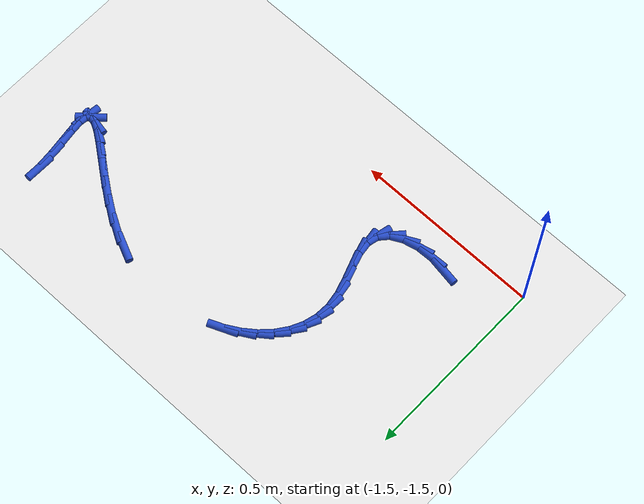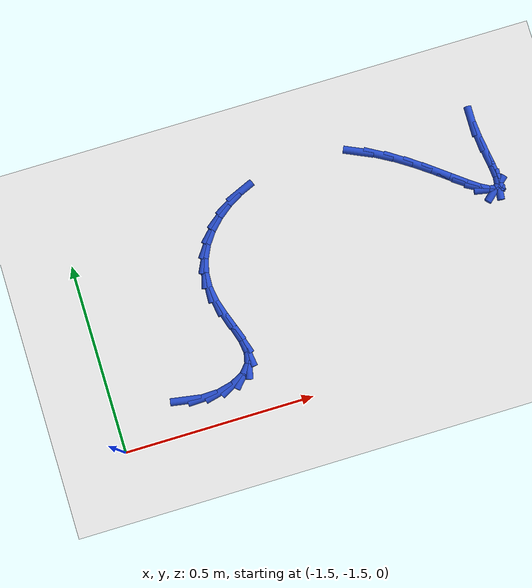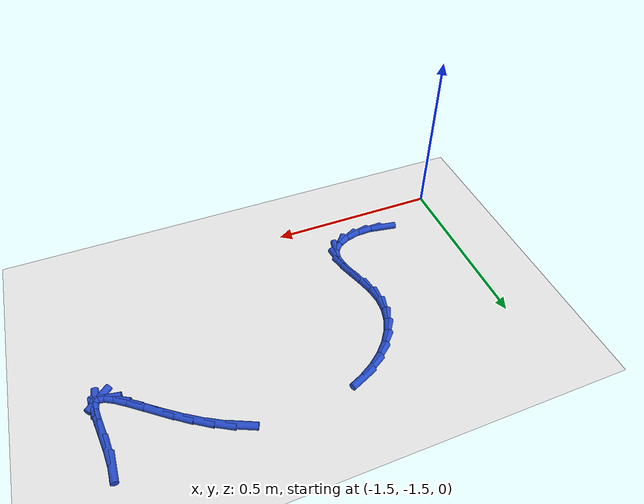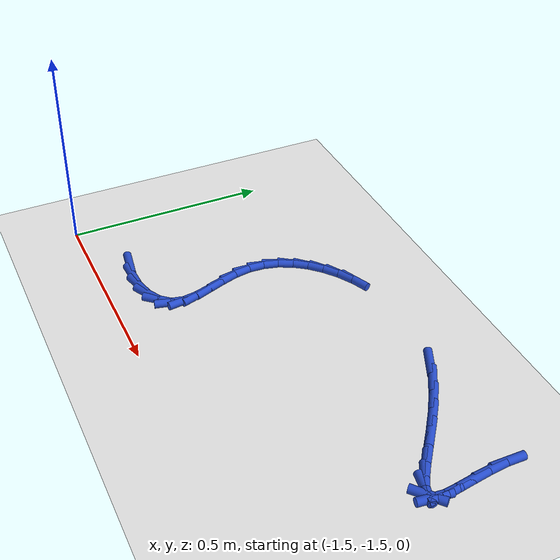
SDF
<sdf version="1.6">
 <world name="default">
  <model name="ground_plane">
   <static>1</static>
   <link name="link">
    <collision name="collision">
     <geometry><plane><normal>0 0 1</normal><size>100 100</size></plane></geometry>
     <surface><friction><ode><mu>100</mu><mu2>50</mu2></ode></friction></surface>
    </collision>
    <visual name="visual">
     <cast_shadows>0</cast_shadows>
     <geometry><plane><normal>0 0 1</normal><size>100 100</size></plane></geometry>
     <material>
      <script><uri>file://media/materials/scripts/gazebo.material</uri><name>Gazebo/WhiteGlow</name></script>
     </material>
    </visual>
   </link>
  </model>
  <model name="line">
   <link name="link_212">
    <pose>-1.3152041415502198 -1.4161363192918932 0.01 0 1.57 -0.16257639946965396</pose>
    <collision name="collision">
     <geometry><cylinder><radius>0.01</radius><length>0.08</length></cylinder></geometry>
    </collision>
    <visual name="visual">
     <material>
      <script><name>Gazebo/Blue</name><uri>file://media/materials/scripts/gazebo.material</uri></script>
     </material>
     <geometry><cylinder><radius>0.01</radius><length>0.08</length></cylinder></geometry>
    </visual>
   </link>
   <link name="link_213">
    <pose>-1.2716650968189083 -1.4232777703360069 0.01 0 1.57 0.03418323781027926</pose>
    <collision name="collision">
     <geometry><cylinder><radius>0.01</radius><length>0.08</length></cylinder></geometry>
    </collision>
    <visual name="visual">
     <material>
      <script><name>Gazebo/Blue</name><uri>file://media/materials/scripts/gazebo.material</uri></script>
     </material>
     <geometry><cylinder><radius>0.01</radius><length>0.08</length></cylinder></geometry>
    </visual>
   </link>
   <link name="link_214">
    <pose>-1.2280499803440268 -1.4217862834611346 0.01 0 1.57 0.2324873619110318</pose>
    <collision name="collision">
     <geometry><cylinder><radius>0.01</radius><length>0.08</length></cylinder></geometry>
    </collision>
    <visual name="visual">
     <material>
      <script><name>Gazebo/Blue</name><uri>file://media/materials/scripts/gazebo.material</uri></script>
     </material>
     <geometry><cylinder><radius>0.01</radius><length>0.08</length></cylinder></geometry>
    </visual>
   </link>
   <link name="link_215">
    <pose>-1.1882102844981302 -1.412353493512939 0.01 0 1.57 0.4778515800676931</pose>
    <collision name="collision">
     <geometry><cylinder><radius>0.01</radius><length>0.08</length></cylinder></geometry>
    </collision>
    <visual name="visual">
     <material>
      <script><name>Gazebo/Blue</name><uri>file://media/materials/scripts/gazebo.material</uri></script>
     </material>
     <geometry><cylinder><radius>0.01</radius><length>0.08</length></cylinder></geometry>
    </visual>
   </link>
   <link name="link_216">
    <pose>-1.1559975016537738 -1.3956710353370816 0.01 0 1.57 0.8423262743415342</pose>
    <collision name="collision">
     <geometry><cylinder><radius>0.01</radius><length>0.08</length></cylinder></geometry>
    </collision>
    <visual name="visual">
     <material>
      <script><name>Gazebo/Blue</name><uri>file://media/materials/scripts/gazebo.material</uri></script>
     </material>
     <geometry><cylinder><radius>0.01</radius><length>0.08</length></cylinder></geometry>
    </visual>
   </link>
   <link name="link_217">
    <pose>-1.1352631241835132 -1.3724305437792261 0.01 0 1.57 1.3443138641735386</pose>
    <collision name="collision">
     <geometry><cylinder><radius>0.01</radius><length>0.08</length></cylinder></geometry>
    </collision>
    <visual name="visual">
     <material>
      <script><name>Gazebo/Blue</name><uri>file://media/materials/scripts/gazebo.material</uri></script>
     </material>
     <geometry><cylinder><radius>0.01</radius><length>0.08</length></cylinder></geometry>
    </visual>
   </link>
   <link name="link_218">
    <pose>-1.1285768580100428 -1.3434148276059579 0.01 0 1.57 -1.4378310288668645</pose>
    <collision name="collision">
     <geometry><cylinder><radius>0.01</radius><length>0.08</length></cylinder></geometry>
    </collision>
    <visual name="visual">
     <material>
      <script><name>Gazebo/Blue</name><uri>file://media/materials/scripts/gazebo.material</uri></script>
     </material>
     <geometry><cylinder><radius>0.01</radius><length>0.08</length></cylinder></geometry>
    </visual>
   </link>
   <link name="link_219">
    <pose>-1.1330738939651241 -1.3097932545533397 0.01 0 1.57 -1.2721851108076876</pose>
    <collision name="collision">
     <geometry><cylinder><radius>0.01</radius><length>0.08</length></cylinder></geometry>
    </collision>
    <visual name="visual">
     <material>
      <script><name>Gazebo/Blue</name><uri>file://media/materials/scripts/gazebo.material</uri></script>
     </material>
     <geometry><cylinder><radius>0.01</radius><length>0.08</length></cylinder></geometry>
    </visual>
   </link>
   <link name="link_220">
    <pose>-1.1444494004873638 -1.2728376216566488 0.01 0 1.57 -1.227450268526067</pose>
    <collision name="collision">
     <geometry><cylinder><radius>0.01</radius><length>0.08</length></cylinder></geometry>
    </collision>
    <visual name="visual">
     <material>
      <script><name>Gazebo/Blue</name><uri>file://media/materials/scripts/gazebo.material</uri></script>
     </material>
     <geometry><cylinder><radius>0.01</radius><length>0.08</length></cylinder></geometry>
    </visual>
   </link>
   <link name="link_221">
    <pose>-1.1583985360856308 -1.2338197266574673 0.01 0 1.57 -1.2730044041688493</pose>
    <collision name="collision">
     <geometry><cylinder><radius>0.01</radius><length>0.08</length></cylinder></geometry>
    </collision>
    <visual name="visual">
     <material>
      <script><name>Gazebo/Blue</name><uri>file://media/materials/scripts/gazebo.material</uri></script>
     </material>
     <geometry><cylinder><radius>0.01</radius><length>0.08</length></cylinder></geometry>
    </visual>
   </link>
   <link name="link_222">
    <pose>-1.1706164592687964 -1.194011367297378 0.01 0 1.57 -1.4133641635246437</pose>
    <collision name="collision">
     <geometry><cylinder><radius>0.01</radius><length>0.08</length></cylinder></geometry>
    </collision>
    <visual name="visual">
     <material>
      <script><name>Gazebo/Blue</name><uri>file://media/materials/scripts/gazebo.material</uri></script>
     </material>
     <geometry><cylinder><radius>0.01</radius><length>0.08</length></cylinder></geometry>
    </visual>
   </link>
   <link name="link_223">
    <pose>-1.1768612313160665 -1.1546731883490364 0.01 0 1.57 1.5225806165175242</pose>
    <collision name="collision">
     <geometry><cylinder><radius>0.01</radius><length>0.08</length></cylinder></geometry>
    </collision>
    <visual name="visual">
     <material>
      <script><name>Gazebo/Blue</name><uri>file://media/materials/scripts/gazebo.material</uri></script>
     </material>
     <geometry><cylinder><radius>0.01</radius><length>0.08</length></cylinder></geometry>
    </visual>
   </link>
   <link name="link_224">
    <pose>-1.1750282733939539 -1.11668687022027 0.01 0 1.57 1.3167181536272181</pose>
    <collision name="collision">
     <geometry><cylinder><radius>0.01</radius><length>0.08</length></cylinder></geometry>
    </collision>
    <visual name="visual">
     <material>
      <script><name>Gazebo/Blue</name><uri>file://media/materials/scripts/gazebo.material</uri></script>
     </material>
     <geometry><cylinder><radius>0.01</radius><length>0.08</length></cylinder></geometry>
    </visual>
   </link>
   <link name="link_225">
    <pose>-1.1656234204484688 -1.080471254184625 0.01 0 1.57 1.1240835560477316</pose>
    <collision name="collision">
     <geometry><cylinder><radius>0.01</radius><length>0.08</length></cylinder></geometry>
    </collision>
    <visual name="visual">
     <material>
      <script><name>Gazebo/Blue</name><uri>file://media/materials/scripts/gazebo.material</uri></script>
     </material>
     <geometry><cylinder><radius>0.01</radius><length>0.08</length></cylinder></geometry>
    </visual>
   </link>
   <link name="link_226">
    <pose>-1.149311208144467 -1.04641704310177 0.01 0 1.57 0.9494224878973627</pose>
    <collision name="collision">
     <geometry><cylinder><radius>0.01</radius><length>0.08</length></cylinder></geometry>
    </collision>
    <visual name="visual">
     <material>
      <script><name>Gazebo/Blue</name><uri>file://media/materials/scripts/gazebo.material</uri></script>
     </material>
     <geometry><cylinder><radius>0.01</radius><length>0.08</length></cylinder></geometry>
    </visual>
   </link>
   <link name="link_227">
    <pose>-1.1267561721468053 -1.0149149398313755 0.01 0 1.57 0.7929116736465545</pose>
    <collision name="collision">
     <geometry><cylinder><radius>0.01</radius><length>0.08</length></cylinder></geometry>
    </collision>
    <visual name="visual">
     <material>
      <script><name>Gazebo/Blue</name><uri>file://media/materials/scripts/gazebo.material</uri></script>
     </material>
     <geometry><cylinder><radius>0.01</radius><length>0.08</length></cylinder></geometry>
    </visual>
   </link>
   <link name="link_228">
    <pose>-1.0986228481203382 -0.9863556472331082 0.01 0 1.57 0.6519769919616367</pose>
    <collision name="collision">
     <geometry><cylinder><radius>0.01</radius><length>0.08</length></cylinder></geometry>
    </collision>
    <visual name="visual">
     <material>
      <script><name>Gazebo/Blue</name><uri>file://media/materials/scripts/gazebo.material</uri></script>
     </material>
     <geometry><cylinder><radius>0.01</radius><length>0.08</length></cylinder></geometry>
    </visual>
   </link>
   <link name="link_229">
    <pose>-1.0655757717299217 -0.9611298681666378 0.01 0 1.57 0.5229658640572757</pose>
    <collision name="collision">
     <geometry><cylinder><radius>0.01</radius><length>0.08</length></cylinder></geometry>
    </collision>
    <visual name="visual">
     <material>
      <script><name>Gazebo/Blue</name><uri>file://media/materials/scripts/gazebo.material</uri></script>
     </material>
     <geometry><cylinder><radius>0.01</radius><length>0.08</length></cylinder></geometry>
    </visual>
   </link>
   <link name="link_230">
    <pose>-1.0282794786404108 -0.9396283054916325 0.01 0 1.57 0.4021240003641023</pose>
    <collision name="collision">
     <geometry><cylinder><radius>0.01</radius><length>0.08</length></cylinder></geometry>
    </collision>
    <visual name="visual">
     <material>
      <script><name>Gazebo/Blue</name><uri>file://media/materials/scripts/gazebo.material</uri></script>
     </material>
     <geometry><cylinder><radius>0.01</radius><length>0.08</length></cylinder></geometry>
    </visual>
   </link>
   <link name="link_237">
    <pose>-0.7040483500819902 -0.9262140951996933 0.01 0 1.57 -0.4318477971643181</pose>
    <collision name="collision">
     <geometry><cylinder><radius>0.01</radius><length>0.08</length></cylinder></geometry>
    </collision>
    <visual name="visual">
     <material>
      <script><name>Gazebo/Blue</name><uri>file://media/materials/scripts/gazebo.material</uri></script>
     </material>
     <geometry><cylinder><radius>0.01</radius><length>0.08</length></cylinder></geometry>
    </visual>
   </link>
   <link name="link_238">
    <pose>-0.6566742411287096 -0.9480468973593139 0.01 0 1.57 -0.5250140541944311</pose>
    <collision name="collision">
     <geometry><cylinder><radius>0.01</radius><length>0.08</length></cylinder></geometry>
    </collision>
    <visual name="visual">
     <material>
      <script><name>Gazebo/Blue</name><uri>file://media/materials/scripts/gazebo.material</uri></script>
     </material>
     <geometry><cylinder><radius>0.01</radius><length>0.08</length></cylinder></geometry>
    </visual>
   </link>
   <link name="link_239">
    <pose>-0.6109950342213825 -0.9745060687176788 0.01 0 1.57 -0.5910738837558187</pose>
    <collision name="collision">
     <geometry><cylinder><radius>0.01</radius><length>0.08</length></cylinder></geometry>
    </collision>
    <visual name="visual">
     <material>
      <script><name>Gazebo/Blue</name><uri>file://media/materials/scripts/gazebo.material</uri></script>
     </material>
     <geometry><cylinder><radius>0.01</radius><length>0.08</length></cylinder></geometry>
    </visual>
   </link>
   <link name="link_240">
    <pose>-0.5676418310588468 -1.003600926908258 0.01 0 1.57 -0.6346145517681723</pose>
    <collision name="collision">
     <geometry><cylinder><radius>0.01</radius><length>0.08</length></cylinder></geometry>
    </collision>
    <visual name="visual">
     <material>
      <script><name>Gazebo/Blue</name><uri>file://media/materials/scripts/gazebo.material</uri></script>
     </material>
     <geometry><cylinder><radius>0.01</radius><length>0.08</length></cylinder></geometry>
    </visual>
   </link>
   <link name="link_241">
    <pose>-0.5272457333399404 -1.0333407895645215 0.01 0 1.57 -0.6570668676938938</pose>
    <collision name="collision">
     <geometry><cylinder><radius>0.01</radius><length>0.08</length></cylinder></geometry>
    </collision>
    <visual name="visual">
     <material>
      <script><name>Gazebo/Blue</name><uri>file://media/materials/scripts/gazebo.material</uri></script>
     </material>
     <geometry><cylinder><radius>0.01</radius><length>0.08</length></cylinder></geometry>
    </visual>
   </link>
   <link name="link_242">
    <pose>-0.4904378427635014 -1.0617349743199382 0.01 0 1.57 -0.6554967341077862</pose>
    <collision name="collision">
     <geometry><cylinder><radius>0.01</radius><length>0.08</length></cylinder></geometry>
    </collision>
    <visual name="visual">
     <material>
      <script><name>Gazebo/Blue</name><uri>file://media/materials/scripts/gazebo.material</uri></script>
     </material>
     <geometry><cylinder><radius>0.01</radius><length>0.08</length></cylinder></geometry>
    </visual>
   </link>
   <link name="link_243">
    <pose>-0.4578492610283667 -1.0867927988079797 0.01 0 1.57 -0.618284524303209</pose>
    <collision name="collision">
     <geometry><cylinder><radius>0.01</radius><length>0.08</length></cylinder></geometry>
    </collision>
    <visual name="visual">
     <material>
      <script><name>Gazebo/Blue</name><uri>file://media/materials/scripts/gazebo.material</uri></script>
     </material>
     <geometry><cylinder><radius>0.01</radius><length>0.08</length></cylinder></geometry>
    </visual>
   </link>
   <link name="link_244">
    <pose>-0.43011108983337626 -1.1065235806621132 0.01 0 1.57 -0.5087534492278172</pose>
    <collision name="collision">
     <geometry><cylinder><radius>0.01</radius><length>0.08</length></cylinder></geometry>
    </collision>
    <visual name="visual">
     <material>
      <script><name>Gazebo/Blue</name><uri>file://media/materials/scripts/gazebo.material</uri></script>
     </material>
     <geometry><cylinder><radius>0.01</radius><length>0.08</length></cylinder></geometry>
    </visual>
   </link>
   <link name="link_245">
    <pose>-0.4078544308773672 -1.1189366375158103 0.01 0 1.57 -0.18998980781766764</pose>
    <collision name="collision">
     <geometry><cylinder><radius>0.01</radius><length>0.08</length></cylinder></geometry>
    </collision>
    <visual name="visual">
     <material>
      <script><name>Gazebo/Blue</name><uri>file://media/materials/scripts/gazebo.material</uri></script>
     </material>
     <geometry><cylinder><radius>0.01</radius><length>0.08</length></cylinder></geometry>
    </visual>
   </link>
   <link name="link_246">
    <pose>-0.3917103858591774 -1.1220412870025396 0.01 0 1.57 0.7169683785272889</pose>
    <collision name="collision">
     <geometry><cylinder><radius>0.01</radius><length>0.08</length></cylinder></geometry>
    </collision>
    <visual name="visual">
     <material>
      <script><name>Gazebo/Blue</name><uri>file://media/materials/scripts/gazebo.material</uri></script>
     </material>
     <geometry><cylinder><radius>0.01</radius><length>0.08</length></cylinder></geometry>
    </visual>
   </link>
   <link name="link_247">
    <pose>-0.3823100564776448 -1.113846846755772 0.01 0 1.57 1.4583926880632434</pose>
    <collision name="collision">
     <geometry><cylinder><radius>0.01</radius><length>0.08</length></cylinder></geometry>
    </collision>
    <visual name="visual">
     <material>
      <script><name>Gazebo/Blue</name><uri>file://media/materials/scripts/gazebo.material</uri></script>
     </material>
     <geometry><cylinder><radius>0.01</radius><length>0.08</length></cylinder></geometry>
    </visual>
   </link>
   <link name="link_248">
    <pose>-0.3799486639813389 -1.0929272477990877 0.01 0 1.57 -1.4781963876691275</pose>
    <collision name="collision">
     <geometry><cylinder><radius>0.01</radius><length>0.08</length></cylinder></geometry>
    </collision>
    <visual name="visual">
     <material>
      <script><name>Gazebo/Blue</name><uri>file://media/materials/scripts/gazebo.material</uri></script>
     </material>
     <geometry><cylinder><radius>0.01</radius><length>0.08</length></cylinder></geometry>
    </visual>
   </link>
   <link name="link_249">
    <pose>-0.38288812218092094 -1.0612744009900772 0.01 0 1.57 -1.425061909460894</pose>
    <collision name="collision">
     <geometry><cylinder><radius>0.01</radius><length>0.08</length></cylinder></geometry>
    </collision>
    <visual name="visual">
     <material>
      <script><name>Gazebo/Blue</name><uri>file://media/materials/scripts/gazebo.material</uri></script>
     </material>
     <geometry><cylinder><radius>0.01</radius><length>0.08</length></cylinder></geometry>
    </visual>
   </link>
   <link name="link_250">
    <pose>-0.3886291763253264 -1.0221597378066527 0.01 0 1.57 -1.4321608712599376</pose>
    <collision name="collision">
     <geometry><cylinder><radius>0.01</radius><length>0.08</length></cylinder></geometry>
    </collision>
    <visual name="visual">
     <material>
      <script><name>Gazebo/Blue</name><uri>file://media/materials/scripts/gazebo.material</uri></script>
     </material>
     <geometry><cylinder><radius>0.01</radius><length>0.08</length></cylinder></geometry>
    </visual>
   </link>
   <link name="link_251">
    <pose>-0.39467123974797647 -0.9788569286701774 0.01 0 1.57 -1.4841139962442813</pose>
    <collision name="collision">
     <geometry><cylinder><radius>0.01</radius><length>0.08</length></cylinder></geometry>
    </collision>
    <visual name="visual">
     <material>
      <script><name>Gazebo/Blue</name><uri>file://media/materials/scripts/gazebo.material</uri></script>
     </material>
     <geometry><cylinder><radius>0.01</radius><length>0.08</length></cylinder></geometry>
    </visual>
   </link>
   <link name="link_252">
    <pose>-0.398513725782292 -0.9346396440020124 0.01 0 1.57 1.5566963728496162</pose>
    <collision name="collision">
     <geometry><cylinder><radius>0.01</radius><length>0.08</length></cylinder></geometry>
    </collision>
    <visual name="visual">
     <material>
      <script><name>Gazebo/Blue</name><uri>file://media/materials/scripts/gazebo.material</uri></script>
     </material>
     <geometry><cylinder><radius>0.01</radius><length>0.08</length></cylinder></geometry>
    </visual>
   </link>
  </model>
 </world>
</sdf>
